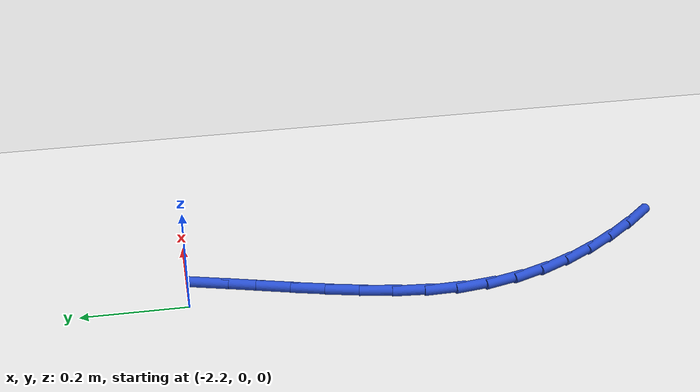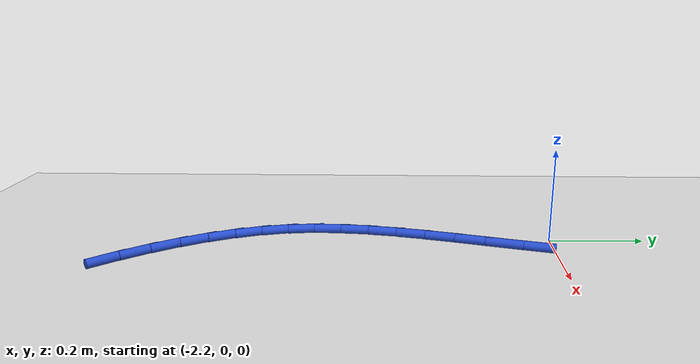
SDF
<sdf version="1.6">
 <world name="default">
  <model name="ground_plane">
   <static>1</static>
   <link name="link">
    <collision name="collision">
     <geometry><plane><normal>0 0 1</normal><size>100 100</size></plane></geometry>
     <surface><friction><ode><mu>100</mu><mu2>50</mu2></ode></friction></surface>
    </collision>
    <visual name="visual">
     <cast_shadows>0</cast_shadows>
     <geometry><plane><normal>0 0 1</normal><size>100 100</size></plane></geometry>
     <material>
      <script><uri>file://media/materials/scripts/gazebo.material</uri><name>Gazebo/WhiteGlow</name></script>
     </material>
    </visual>
   </link>
  </model>
  <model name="line">
   <link name="link_59">
    <pose>-2.140808059671699 -0.03867078344387003 0.01 0 1.57 1.3053905349291715</pose>
    <collision name="collision">
     <geometry><cylinder><radius>0.01</radius><length>0.08</length></cylinder></geometry>
    </collision>
    <visual name="visual">
     <material>
      <script><name>Gazebo/Blue</name><uri>file://media/materials/scripts/gazebo.material</uri></script>
     </material>
     <geometry><cylinder><radius>0.01</radius><length>0.08</length></cylinder></geometry>
    </visual>
   </link>
   <link name="link_60">
    <pose>-2.1580543389320836 -0.10211861058704552 0.01 0 1.57 1.2961487954001807</pose>
    <collision name="collision">
     <geometry><cylinder><radius>0.01</radius><length>0.08</length></cylinder></geometry>
    </collision>
    <visual name="visual">
     <material>
      <script><name>Gazebo/Blue</name><uri>file://media/materials/scripts/gazebo.material</uri></script>
     </material>
     <geometry><cylinder><radius>0.01</radius><length>0.08</length></cylinder></geometry>
    </visual>
   </link>
   <link name="link_61">
    <pose>-2.1758706166698274 -0.16534889156412755 0.01 0 1.57 1.3017473675852589</pose>
    <collision name="collision">
     <geometry><cylinder><radius>0.01</radius><length>0.08</length></cylinder></geometry>
    </collision>
    <visual name="visual">
     <material>
      <script><name>Gazebo/Blue</name><uri>file://media/materials/scripts/gazebo.material</uri></script>
     </material>
     <geometry><cylinder><radius>0.01</radius><length>0.08</length></cylinder></geometry>
    </visual>
   </link>
   <link name="link_62">
    <pose>-2.1932018008046246 -0.22820349601139597 0.01 0 1.57 1.3226366922852846</pose>
    <collision name="collision">
     <geometry><cylinder><radius>0.01</radius><length>0.08</length></cylinder></geometry>
    </collision>
    <visual name="visual">
     <material>
      <script><name>Gazebo/Blue</name><uri>file://media/materials/scripts/gazebo.material</uri></script>
     </material>
     <geometry><cylinder><radius>0.01</radius><length>0.08</length></cylinder></geometry>
    </visual>
   </link>
   <link name="link_63">
    <pose>-2.2089927992561678 -0.29052429356513104 0.01 0 1.57 1.3598653303229795</pose>
    <collision name="collision">
     <geometry><cylinder><radius>0.01</radius><length>0.08</length></cylinder></geometry>
    </collision>
    <visual name="visual">
     <material>
      <script><name>Gazebo/Blue</name><uri>file://media/materials/scripts/gazebo.material</uri></script>
     </material>
     <geometry><cylinder><radius>0.01</radius><length>0.08</length></cylinder></geometry>
    </visual>
   </link>
   <link name="link_64">
    <pose>-2.2221885199441505 -0.3521531538616105 0.01 0 1.57 1.415018080448974</pose>
    <collision name="collision">
     <geometry><cylinder><radius>0.01</radius><length>0.08</length></cylinder></geometry>
    </collision>
    <visual name="visual">
     <material>
      <script><name>Gazebo/Blue</name><uri>file://media/materials/scripts/gazebo.material</uri></script>
     </material>
     <geometry><cylinder><radius>0.01</radius><length>0.08</length></cylinder></geometry>
    </visual>
   </link>
   <link name="link_65">
    <pose>-2.231733870788265 -0.4129319465371146 0.01 0 1.57 1.4899981982944992</pose>
    <collision name="collision">
     <geometry><cylinder><radius>0.01</radius><length>0.08</length></cylinder></geometry>
    </collision>
    <visual name="visual">
     <material>
      <script><name>Gazebo/Blue</name><uri>file://media/materials/scripts/gazebo.material</uri></script>
     </material>
     <geometry><cylinder><radius>0.01</radius><length>0.08</length></cylinder></geometry>
    </visual>
   </link>
   <link name="link_66">
    <pose>-2.2365737597082043 -0.47270254122792355 0.01 0 1.57 -1.5550877544807666</pose>
    <collision name="collision">
     <geometry><cylinder><radius>0.01</radius><length>0.08</length></cylinder></geometry>
    </collision>
    <visual name="visual">
     <material>
      <script><name>Gazebo/Blue</name><uri>file://media/materials/scripts/gazebo.material</uri></script>
     </material>
     <geometry><cylinder><radius>0.01</radius><length>0.08</length></cylinder></geometry>
    </visual>
   </link>
   <link name="link_67">
    <pose>-2.2356530946236624 -0.5313068075703153 0.01 0 1.57 -1.4378202466840657</pose>
    <collision name="collision">
     <geometry><cylinder><radius>0.01</radius><length>0.08</length></cylinder></geometry>
    </collision>
    <visual name="visual">
     <material>
      <script><name>Gazebo/Blue</name><uri>file://media/materials/scripts/gazebo.material</uri></script>
     </material>
     <geometry><cylinder><radius>0.01</radius><length>0.08</length></cylinder></geometry>
    </visual>
   </link>
   <link name="link_68">
    <pose>-2.227989874523513 -0.588595292150151 0.01 0 1.57 -1.31715769743066</pose>
    <collision name="collision">
     <geometry><cylinder><radius>0.01</radius><length>0.08</length></cylinder></geometry>
    </collision>
    <visual name="visual">
     <material>
      <script><name>Gazebo/Blue</name><uri>file://media/materials/scripts/gazebo.material</uri></script>
     </material>
     <geometry><cylinder><radius>0.01</radius><length>0.08</length></cylinder></geometry>
    </visual>
   </link>
   <link name="link_69">
    <pose>-2.213491910728898 -0.6445241749340885 0.01 0 1.57 -1.2062940952719892</pose>
    <collision name="collision">
     <geometry><cylinder><radius>0.01</radius><length>0.08</length></cylinder></geometry>
    </collision>
    <visual name="visual">
     <material>
      <script><name>Gazebo/Blue</name><uri>file://media/materials/scripts/gazebo.material</uri></script>
     </material>
     <geometry><cylinder><radius>0.01</radius><length>0.08</length></cylinder></geometry>
    </visual>
   </link>
   <link name="link_70">
    <pose>-2.192660734639384 -0.6991201189073482 0.01 0 1.57 -1.1070501821281191</pose>
    <collision name="collision">
     <geometry><cylinder><radius>0.01</radius><length>0.08</length></cylinder></geometry>
    </collision>
    <visual name="visual">
     <material>
      <script><name>Gazebo/Blue</name><uri>file://media/materials/scripts/gazebo.material</uri></script>
     </material>
     <geometry><cylinder><radius>0.01</radius><length>0.08</length></cylinder></geometry>
    </visual>
   </link>
   <link name="link_71">
    <pose>-2.166008694368803 -0.7524110711529906 0.01 0 1.57 -1.0198109993738194</pose>
    <collision name="collision">
     <geometry><cylinder><radius>0.01</radius><length>0.08</length></cylinder></geometry>
    </collision>
    <visual name="visual">
     <material>
      <script><name>Gazebo/Blue</name><uri>file://media/materials/scripts/gazebo.material</uri></script>
     </material>
     <geometry><cylinder><radius>0.01</radius><length>0.08</length></cylinder></geometry>
    </visual>
   </link>
   <link name="link_72">
    <pose>-2.134048138030986 -0.8044249787540795 0.01 0 1.57 -0.9441051202055678</pose>
    <collision name="collision">
     <geometry><cylinder><radius>0.01</radius><length>0.08</length></cylinder></geometry>
    </collision>
    <visual name="visual">
     <material>
      <script><name>Gazebo/Blue</name><uri>file://media/materials/scripts/gazebo.material</uri></script>
     </material>
     <geometry><cylinder><radius>0.01</radius><length>0.08</length></cylinder></geometry>
    </visual>
   </link>
   <link name="link_73">
    <pose>-2.097291413739764 -0.8551897887936774 0.01 0 1.57 -0.878993637612519</pose>
    <collision name="collision">
     <geometry><cylinder><radius>0.01</radius><length>0.08</length></cylinder></geometry>
    </collision>
    <visual name="visual">
     <material>
      <script><name>Gazebo/Blue</name><uri>file://media/materials/scripts/gazebo.material</uri></script>
     </material>
     <geometry><cylinder><radius>0.01</radius><length>0.08</length></cylinder></geometry>
    </visual>
   </link>
   <link name="link_74">
    <pose>-2.0562508696089683 -0.9047334483548471 0.01 0 1.57 -0.8233613067332113</pose>
    <collision name="collision">
     <geometry><cylinder><radius>0.01</radius><length>0.08</length></cylinder></geometry>
    </collision>
    <visual name="visual">
     <material>
      <script><name>Gazebo/Blue</name><uri>file://media/materials/scripts/gazebo.material</uri></script>
     </material>
     <geometry><cylinder><radius>0.01</radius><length>0.08</length></cylinder></geometry>
    </visual>
   </link>
  </model>
 </world>
</sdf>
